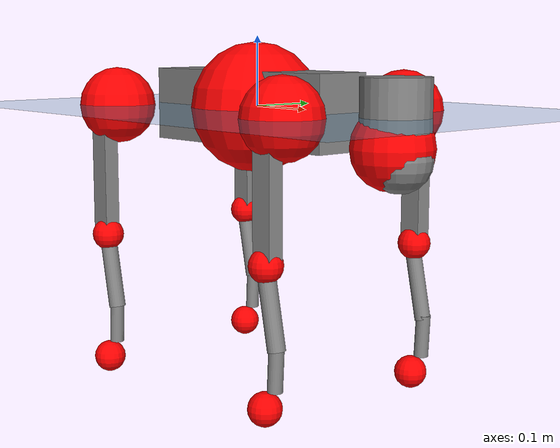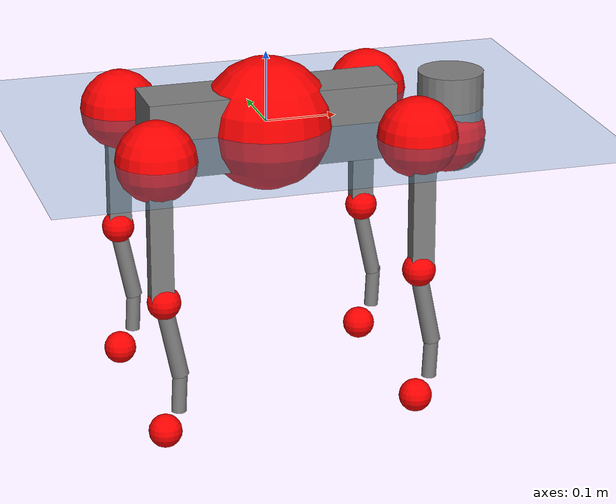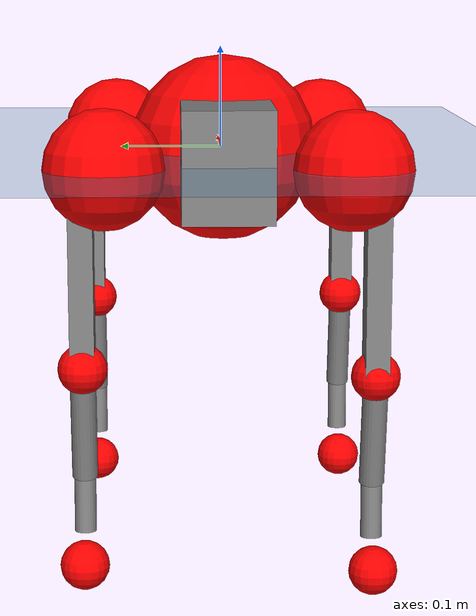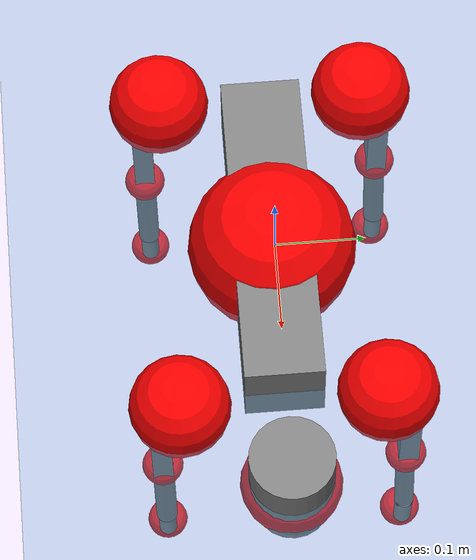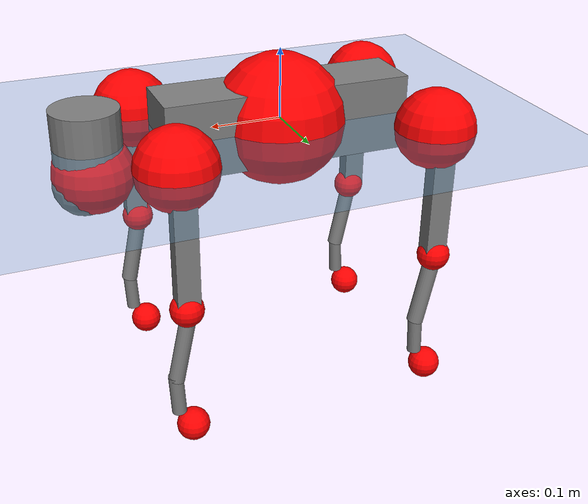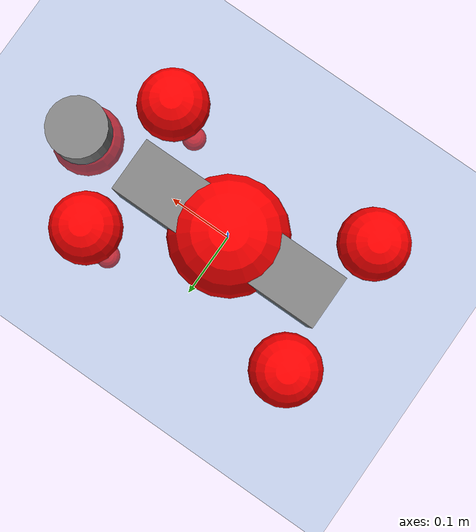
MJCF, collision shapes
<mujoco model="go2">
  <compiler angle="radian" assetdir="assets" balanceinertia="true" inertiafromgeom="false"/>

  <option timestep="0.005" density="1.2" viscosity="2e-05"/>

  <size nkey="1"/>

  <visual>
    <quality shadowsize="8192"/>
    <map shadowclip="0.5"/>
  </visual>

  <default>
    <default class="/">
      <geom contype="0" conaffinity="0" group="1" solref="-1000 -80"/>
      <site size="0.01 0.005 0.005" group="5"/>
      <general forcelimited="true" biastype="affine" gainprm="20" biasprm="0 -20 -0.5"/>
      <default class="go2">
        <joint armature="0.01" damping="0.01" frictionloss="0.2"/>
        <geom condim="1" margin="0.001"/>
        <default class="visual">
          <geom type="mesh" group="2"/>
        </default>
        <default class="collision">
          <geom group="3"/>
          <default class="foot">
            <geom size="0.022 0 0" condim="6" priority="1" friction="0.8 0.02 0.01" solimp="0.015 1 0.022"/>
          </default>
        </default>
        <default class="reward_collision_sphere">
          <geom group="5" rgba="1 0 0 1"/>
        </default>
      </default>
    </default>
  </default>

  <asset>
    <texture type="skybox" colorspace="auto" name="//unnamed_texture_0" builtin="gradient" rgb1="0.95 0.95 0.95" rgb2="0.95 0.95 0.95" width="100" height="600"/>
    <texture type="2d" colorspace="auto" name="texplane" builtin="checker" rgb1="0.345 0.575 0.748" rgb2="0.345 0.575 0.748" markrgb="1 1 1" width="512" height="512"/>
    <material name="MatPlane" class="/" texture="texplane" texuniform="true" texrepeat="2 2" specular="0.9"/>
    <material name="metal" class="/" rgba="0.9 0.95 0.95 1"/>
    <material name="black" class="/" rgba="0 0 0 1"/>
    <material name="white" class="/"/>
    <material name="gray" class="/" rgba="0.671705 0.692426 0.77427 1"/>
    <mesh name="base_0" class="/" file="base_0.obj"/>
    <mesh name="base_1" class="/" file="base_1.obj"/>
    <mesh name="base_2" class="/" file="base_2.obj"/>
    <mesh name="base_3" class="/" file="base_3.obj"/>
    <mesh name="base_4" class="/" file="base_4.obj"/>
    <mesh name="hip_0" class="/" file="hip_0.obj"/>
    <mesh name="hip_1" class="/" file="hip_1.obj"/>
    <mesh name="thigh_0" class="/" file="thigh_0.obj"/>
    <mesh name="thigh_1" class="/" file="thigh_1.obj"/>
    <mesh name="thigh_mirror_0" class="/" file="thigh_mirror_0.obj"/>
    <mesh name="thigh_mirror_1" class="/" file="thigh_mirror_1.obj"/>
    <mesh name="calf_0" class="/" file="calf_0.obj"/>
    <mesh name="calf_1" class="/" file="calf_1.obj"/>
    <mesh name="calf_mirror_0" class="/" file="calf_mirror_0.obj"/>
    <mesh name="calf_mirror_1" class="/" file="calf_mirror_1.obj"/>
    <mesh name="foot" class="/" file="foot.obj"/>
  </asset>

  <worldbody>
    <geom name="floor" class="/" size="100 100 0.125" type="plane" group="0" material="MatPlane"/>
    <light name="toplight_shadow" class="/" pos="0 0 5" dir="0.0990148 0.0990148 -0.990148" type="directional" ambient="0.04 0.04 0.04" diffuse="0.55 0.55 0.55" specular="0.12 0.12 0.12"/>
    <light name="toplight_fill" class="/" pos="0 0 5" dir="0.0990148 0.0990148 -0.990148" type="directional" castshadow="false" ambient="0.04 0.04 0.04" diffuse="0.3 0.3 0.3" specular="0.08 0.08 0.08"/>
    <body name="trunk" childclass="go2" pos="-0.000133008 -0.00283969 -0.00118522" quat="0.999999 0.000318629 -0.00134184 0.000335842">
      <inertial pos="0.0170973 -0.00126008 -0.00207318" quat="-0.00261081 0.71759 -0.0135537 0.696329" mass="5.68302" diaginertia="0.0774571 0.0787208 0.0139061"/>
      <joint name="//unnamed_joint_0" type="free" armature="0" damping="0" frictionloss="0"/>
      <geom name="//unnamed_geom_1" class="visual" material="black" mesh="base_0"/>
      <geom name="//unnamed_geom_2" class="visual" material="black" mesh="base_1"/>
      <geom name="//unnamed_geom_3" class="visual" material="black" mesh="base_2"/>
      <geom name="//unnamed_geom_4" class="visual" material="white" mesh="base_3"/>
      <geom name="//unnamed_geom_5" class="visual" material="gray" mesh="base_4"/>
      <geom name="trunk_1" class="collision" size="0.175325 0.0435748 0.0531286" type="box"/>
      <geom name="trunk_2" class="collision" size="0.0466041 0.0419437" pos="0.269014 0 0.00891104" type="cylinder"/>
      <geom name="trunk_3" class="collision" size="0.0438078" pos="0.276565 0 -0.0534662"/>
      <geom name="//unnamed_geom_9" class="reward_collision_sphere" size="0.0932082"/>
      <geom name="//unnamed_geom_10" class="reward_collision_sphere" size="0.0559249" pos="0.264294 0 -0.0400997"/>
      <site name="imu" pos="-0.0190112 -0.00456515 0.0331928" size="0.00932082"/>
      <camera name="track" pos="0 -1.92246 0" quat="0.707107 0.707107 0 0" mode="trackcom"/>
      <camera name="ego_camera" pos="0.2945 0 0.0400997" quat="-0.5 -0.5 0.5 0.5"/>
      <body name="FL_hip" pos="0.181161 0.0447215 -0.00045116" quat="1 7.54844e-05 0.000138404 -0.000170663">
        <inertial pos="-0.00544046 -0.000478002 -0.00135615" quat="0.497241 0.500065 0.503123 0.499553" mass="0.547273" diaginertia="0.000670583 0.000474811 0.000272355"/>
        <joint name="FL_hip_joint" pos="0 0 0" axis="0.999891 0.0146855 -0.00143375" stiffness="0.00838419" range="-1.1025 1.0569" armature="0.00964063" damping="0.0030281" frictionloss="0.18237"/>
        <geom name="//unnamed_geom_11" class="visual" material="metal" mesh="hip_0"/>
        <geom name="//unnamed_geom_12" class="visual" material="gray" mesh="hip_1"/>
        <geom name="//unnamed_geom_13" class="collision" size="0.0428758 0.0186416" pos="0 0.0768986 0" quat="0.707107 0.707107 0 0" type="cylinder"/>
        <geom name="//unnamed_geom_14" class="reward_collision_sphere" size="0.0559249" pos="0 0.0672862 0"/>
        <body name="FL_thigh" pos="0.00200613 0.0942424 -0.000291735" quat="1 0.000126965 0.00055128 0.000137772">
          <inertial pos="-0.00300671 -0.0204539 -0.028061" quat="0.824057 0.0849637 -0.020923 0.559709" mass="0.968688" diaginertia="0.00436076 0.00490373 0.000495847"/>
          <joint name="FL_thigh_joint" pos="0 0 0" axis="-0.00868311 0.999876 0.0131376" stiffness="0.0152605" range="-1.62692 3.45312" armature="0.00984147" damping="0.00294072" frictionloss="0.161103"/>
          <geom name="//unnamed_geom_15" class="visual" material="metal" mesh="thigh_0"/>
          <geom name="//unnamed_geom_16" class="visual" material="gray" mesh="thigh_1"/>
          <geom name="//unnamed_geom_17" class="collision" size="0.0992667 0.011418 0.0158454" pos="0 0 -0.0949026" quat="0.707107 0 0.707107 0" type="box"/>
          <body name="FL_calf" pos="0.000593027 -0.00110726 -0.189637" quat="1 -0.000331712 3.39152e-05 -0.000409286">
            <inertial pos="0.00378981 -0.00333224 -0.128174" quat="0.711494 0.0034087 0.00338442 0.702675" mass="0.192059" diaginertia="0.00107282 0.00118517 2.91728e-05"/>
            <joint name="FL_calf_joint" pos="0 0 0" axis="-0.00108538 0.999965 -0.00833787" stiffness="0.0138181" range="-2.70366 -0.78627" armature="0.00795675" damping="0" frictionloss="0.199307"/>
            <geom name="//unnamed_geom_18" class="visual" material="gray" mesh="calf_0"/>
            <geom name="//unnamed_geom_19" class="visual" material="black" mesh="calf_1"/>
            <geom name="FL_calf0" class="collision" size="0.011185 0.0559249" pos="0.00755127 0 -0.0534662" quat="0.994493 0 -0.104807 0" type="cylinder"/>
            <geom name="//unnamed_geom_21" class="collision" size="0.0102529 0.0302927" pos="0.0188782 0 -0.131883" quat="0.999688 0 0.0249974 0" type="cylinder"/>
            <geom name="//unnamed_geom_22" class="visual" pos="0 0 -0.189805" quat="1 0 0 0" material="black" mesh="foot"/>
            <geom name="FL_foot" class="foot" size="0.0156228" pos="-0.00188782 0 -0.189805"/>
            <geom name="//unnamed_geom_24" class="reward_collision_sphere" size="0.023302"/>
            <geom name="//unnamed_geom_25" class="reward_collision_sphere" size="0.023302" pos="-0.00188782 0 -0.189805"/>
            <site name="FL_foot" class="foot" pos="-0.00188782 0 -0.189805" size="0.00932082"/>
          </body>
        </body>
      </body>
      <body name="FR_hip" pos="0.181426 -0.0468424 -0.00135991" quat="1 -0.000325027 0.000144968 0.000221045">
        <inertial pos="-0.00388587 3.32874e-05 -0.00171793" quat="0.502731 0.504363 0.491385 0.501418" mass="0.536424" diaginertia="0.000638905 0.000489637 0.000274847"/>
        <joint name="FR_hip_joint" pos="0 0 0" axis="0.999906 0.00857666 -0.0107049" stiffness="0.000312751" range="-1.06694 1.09745" armature="0.00825822" damping="0.00753825" frictionloss="0.194978"/>
        <geom name="//unnamed_geom_26" class="visual" pos="0 6.10927e-10 2.62039e-08" quat="4.63268e-05 1 0 0" material="metal" mesh="hip_0"/>
        <geom name="//unnamed_geom_27" class="visual" pos="0 9.90386e-10 -6.48123e-08" quat="4.63268e-05 1 0 0" material="gray" mesh="hip_1"/>
        <geom name="//unnamed_geom_28" class="collision" size="0.0428758 0.0186416" pos="0 -0.0768986 0" quat="0.707107 0.707107 0 0" type="cylinder"/>
        <geom name="//unnamed_geom_29" class="reward_collision_sphere" size="0.0559249" pos="0 -0.0672862 0"/>
        <body name="FR_thigh" pos="-0.000590754 -0.091565 0.0016741" quat="1 6.21569e-05 0.000169383 -0.000258916">
          <inertial pos="-0.000713203 0.0187779 -0.0273631" quat="0.547132 -0.0163349 0.0804117 0.833015" mass="0.944718" diaginertia="0.00430167 0.00479438 0.000493861"/>
          <joint name="FR_thigh_joint" pos="0 0 0" axis="0.000987012 -0.999998 -0.00182971" stiffness="0.00264219" range="-3.48037 1.59546" armature="0.00843222" damping="0.0222836" frictionloss="0.160326"/>
          <geom name="//unnamed_geom_30" class="visual" material="metal" mesh="thigh_mirror_0"/>
          <geom name="//unnamed_geom_31" class="visual" material="gray" mesh="thigh_mirror_1"/>
          <geom name="//unnamed_geom_32" class="collision" size="0.0992667 0.011418 0.0158454" pos="0 0 -0.0949026" quat="0.707107 0 0.707107 0" type="box"/>
          <body name="FR_calf" pos="-0.0026197 -0.000124297 -0.186799" quat="1 -3.43105e-05 2.32219e-05 -4.42875e-05">
            <inertial pos="0.0031529 0.0034911 -0.125685" quat="0.705185 -0.0105134 0.00975349 0.708878" mass="0.197911" diaginertia="0.00110564 0.00126077 2.92189e-05"/>
            <joint name="FR_calf_joint" pos="0 0 0" axis="-0.00306651 -0.999992 0.00268588" range="0.859794 2.73618" armature="0.00960531" damping="0" frictionloss="0.170346"/>
            <geom name="//unnamed_geom_33" class="visual" material="gray" mesh="calf_mirror_0"/>
            <geom name="//unnamed_geom_34" class="visual" material="black" mesh="calf_mirror_1"/>
            <geom name="FR_calf0" class="collision" size="0.0121171 0.0559249" pos="0.00943909 0 -0.0534662" quat="0.995004 0 -0.0998334 0" type="cylinder"/>
            <geom name="//unnamed_geom_36" class="collision" size="0.0102529 0.0302927" pos="0.0188782 0 -0.131883" quat="0.999688 0 0.0249974 0" type="cylinder"/>
            <geom name="//unnamed_geom_37" class="visual" pos="0 0 -0.189805" quat="1 0 0 0" material="black" mesh="foot"/>
            <geom name="FR_foot" class="foot" size="0.0202125" pos="-0.00188782 0 -0.189805"/>
            <geom name="//unnamed_geom_39" class="reward_collision_sphere" size="0.023302"/>
            <geom name="//unnamed_geom_40" class="reward_collision_sphere" size="0.023302" pos="-0.00188782 0 -0.189805"/>
            <site name="FR_foot" class="foot" pos="-0.00188782 0 -0.189805" size="0.00932082"/>
          </body>
        </body>
      </body>
      <body name="RL_hip" pos="-0.181768 0.0470899 0.000756444" quat="1 3.67862e-05 0.000431442 1.87727e-05">
        <inertial pos="0.00506971 0.00234576 0.0029167" quat="0.505971 0.498987 0.495746 0.49924" mass="0.529817" diaginertia="0.000647876 0.000462618 0.000272288"/>
        <joint name="RL_hip_joint" pos="0 0 0" axis="-0.999905 -0.0133814 -0.00316903" stiffness="0.0085806" range="-1.00199 1.00834" armature="0.0092473" damping="0.012118" frictionloss="0.211545"/>
        <geom name="//unnamed_geom_41" class="visual" pos="-4.60013e-10 0 -9.01732e-08" quat="4.63268e-05 0 1 0" material="metal" mesh="hip_0"/>
        <geom name="//unnamed_geom_42" class="visual" pos="-7.45736e-10 0 -7.99707e-08" quat="4.63268e-05 0 1 0" material="gray" mesh="hip_1"/>
        <geom name="//unnamed_geom_43" class="collision" size="0.0428758 0.0186416" pos="0 0.0768986 0" quat="0.707107 0.707107 0 0" type="cylinder"/>
        <geom name="//unnamed_geom_44" class="reward_collision_sphere" size="0.0559249" pos="0 0.0672862 0"/>
        <body name="RL_thigh" pos="-0.000461074 0.0887789 0.00275705" quat="1 -0.000145981 -0.000624236 -0.000706478">
          <inertial pos="-0.00289213 -0.0207911 -0.0273496" quat="0.823422 0.0788918 -0.0166812 0.56167" mass="0.920563" diaginertia="0.00432559 0.00497623 0.000509067"/>
          <joint name="RL_thigh_joint" pos="0 0 0" axis="-0.00118623 0.999994 0.00323508" stiffness="0.000803798" range="-0.505053 4.55132" armature="0.0106264" damping="0.0228268" frictionloss="0.161277"/>
          <geom name="//unnamed_geom_45" class="visual" material="metal" mesh="thigh_0"/>
          <geom name="//unnamed_geom_46" class="visual" material="gray" mesh="thigh_1"/>
          <geom name="//unnamed_geom_47" class="collision" size="0.0992667 0.011418 0.0158454" pos="0 0 -0.0949026" quat="0.707107 0 0.707107 0" type="box"/>
          <body name="RL_calf" pos="-0.0022827 -1.02683e-05 -0.187776" quat="0.999999 0.0011452 0.000242095 -0.000772669">
            <inertial pos="0.00556126 0.00190908 -0.124962" quat="0.711457 -0.0027035 -0.00671821 0.702693" mass="0.191434" diaginertia="0.0010705 0.00115194 2.86765e-05"/>
            <joint name="RL_calf_joint" pos="0 0 0" axis="0.0032799 0.999986 0.0042267" stiffness="0.00749241" range="-2.69723 -0.826581" armature="0.00980161" damping="0.0145138" frictionloss="0.160124"/>
            <geom name="//unnamed_geom_48" class="visual" material="gray" mesh="calf_0"/>
            <geom name="//unnamed_geom_49" class="visual" material="black" mesh="calf_1"/>
            <geom name="RL_calf0" class="collision" size="0.0121171 0.0559249" pos="0.00943909 0 -0.0534662" quat="0.995004 0 -0.0998334 0" type="cylinder"/>
            <geom name="//unnamed_geom_51" class="collision" size="0.0102529 0.0302927" pos="0.0188782 0 -0.131883" quat="0.999688 0 0.0249974 0" type="cylinder"/>
            <geom name="//unnamed_geom_52" class="visual" pos="0 0 -0.189805" quat="1 0 0 0" material="black" mesh="foot"/>
            <geom name="RL_foot" class="foot" size="0.0173584" pos="-0.00188782 0 -0.189805"/>
            <geom name="//unnamed_geom_54" class="reward_collision_sphere" size="0.023302"/>
            <geom name="//unnamed_geom_55" class="reward_collision_sphere" size="0.023302" pos="-0.00188782 0 -0.189805"/>
            <site name="RL_foot" class="foot" pos="-0.00188782 0 -0.189805" size="0.00932082"/>
          </body>
        </body>
      </body>
      <body name="RR_hip" pos="-0.183935 -0.0461539 -0.000592357" quat="1 -0.000161917 -0.000210626 0.000159361">
        <inertial pos="0.00407623 -0.0028533 0.000905324" quat="0.499417 0.49592 0.497706 0.506888" mass="0.533802" diaginertia="0.000642594 0.000480621 0.000263289"/>
        <joint name="RR_hip_joint" pos="0 0 0" axis="-0.999994 0.00350981 -0.000279699" stiffness="0.00892646" range="-1.04314 1.10407" armature="0.0102268" damping="0.00564128" frictionloss="0.212518"/>
        <geom name="//unnamed_geom_56" class="visual" pos="4.60613e-10 6.10927e-10 -1.16377e-07" quat="2.14617e-09 4.63268e-05 4.63268e-05 -1" material="metal" mesh="hip_0"/>
        <geom name="//unnamed_geom_57" class="visual" pos="7.44253e-10 9.90386e-10 -1.51584e-08" quat="2.14617e-09 4.63268e-05 4.63268e-05 -1" material="gray" mesh="hip_1"/>
        <geom name="//unnamed_geom_58" class="collision" size="0.0428758 0.0186416" pos="0 -0.0768986 0" quat="0.707107 0.707107 0 0" type="cylinder"/>
        <geom name="//unnamed_geom_59" class="reward_collision_sphere" size="0.0559249" pos="0 -0.0672862 0"/>
        <body name="RR_thigh" pos="-0.00262961 -0.0897001 -0.0035241" quat="1 -0.000695937 4.70245e-05 -0.000465349">
          <inertial pos="-0.002895 0.0188165 -0.0287239" quat="0.553076 -0.0201931 0.0820027 0.82884" mass="0.948895" diaginertia="0.00452898 0.00475088 0.000477925"/>
          <joint name="RR_thigh_joint" pos="0 0 0" axis="-0.00181058 -0.999986 -0.00502535" stiffness="0.00989395" range="-4.55505 0.54306" armature="0.00869254" damping="0.0230369" frictionloss="0.195843"/>
          <geom name="//unnamed_geom_60" class="visual" material="metal" mesh="thigh_mirror_0"/>
          <geom name="//unnamed_geom_61" class="visual" material="gray" mesh="thigh_mirror_1"/>
          <geom name="//unnamed_geom_62" class="collision" size="0.0992667 0.011418 0.0158454" pos="0 0 -0.0949026" quat="0.707107 0 0.707107 0" type="box"/>
          <body name="RR_calf" pos="0.00356992 -0.000353986 -0.189333" quat="1 -2.35474e-06 -0.000184949 0.000328847">
            <inertial pos="0.00308384 -0.000346174 -0.126303" quat="0.702766 -0.00485909 0.00217746 0.711401" mass="0.201951" diaginertia="0.00112724 0.00123546 3.01817e-05"/>
            <joint name="RR_calf_joint" pos="0 0 0" axis="-0.00650186 -0.999957 0.00667121" range="0.878637 2.77388" armature="0.00972252" damping="0.0144904" frictionloss="0.211349"/>
            <geom name="//unnamed_geom_63" class="visual" material="gray" mesh="calf_mirror_0"/>
            <geom name="//unnamed_geom_64" class="visual" material="black" mesh="calf_mirror_1"/>
            <geom name="RR_calf0" class="collision" size="0.0121171 0.0559249" pos="0.00943909 0 -0.0534662" quat="0.995004 0 -0.0998334 0" type="cylinder"/>
            <geom name="//unnamed_geom_66" class="collision" size="0.0102529 0.0302927" pos="0.0188782 0 -0.131883" quat="0.999688 0 0.0249974 0" type="cylinder"/>
            <geom name="//unnamed_geom_67" class="visual" pos="0 0 -0.189805" quat="1 0 0 0" material="black" mesh="foot"/>
            <geom name="RR_foot" class="foot" size="0.0213192" pos="-0.00188782 0 -0.189805"/>
            <geom name="//unnamed_geom_69" class="reward_collision_sphere" size="0.023302"/>
            <geom name="//unnamed_geom_70" class="reward_collision_sphere" size="0.023302" pos="-0.00188782 0 -0.189805"/>
            <site name="RR_foot" class="foot" pos="-0.00188782 0 -0.189805" size="0.00932082"/>
          </body>
        </body>
      </body>
    </body>
  </worldbody>

  <contact>
    <pair class="/" geom1="floor" geom2="FL_foot" name="//unnamed_contact_0"/>
    <pair class="/" geom1="floor" geom2="FR_foot" name="//unnamed_contact_1"/>
    <pair class="/" geom1="floor" geom2="RL_foot" name="//unnamed_contact_2"/>
    <pair class="/" geom1="floor" geom2="RR_foot" name="//unnamed_contact_3"/>
  </contact>

  <actuator>
    <general name="FL_hip" class="/" joint="FL_hip_joint" forcerange="-24.0245 24.0245" gainprm="18.655" biasprm="0 -18.655 -0.457313"/>
    <general name="FL_thigh" class="/" joint="FL_thigh_joint" forcerange="-21.5559 21.5559" gainprm="18.655" biasprm="0 -18.655 -0.457313"/>
    <general name="FL_calf" class="/" joint="FL_calf_joint" forcerange="-40.8632 40.8632" gainprm="18.655" biasprm="0 -18.655 -0.457313"/>
    <general name="FR_hip" class="/" joint="FR_hip_joint" forcerange="-19.9407 19.9407" gainprm="18.655" biasprm="0 -18.655 -0.457313"/>
    <general name="FR_thigh" class="/" joint="FR_thigh_joint" forcerange="-22.5501 22.5501" gainprm="18.655" biasprm="0 -18.655 -0.457313"/>
    <general name="FR_calf" class="/" joint="FR_calf_joint" forcerange="-37.6652 37.6652" gainprm="18.655" biasprm="0 -18.655 -0.457313"/>
    <general name="RL_hip" class="/" joint="RL_hip_joint" forcerange="-20.9396 20.9396" gainprm="18.655" biasprm="0 -18.655 -0.457313"/>
    <general name="RL_thigh" class="/" joint="RL_thigh_joint" forcerange="-22.2789 22.2789" gainprm="18.655" biasprm="0 -18.655 -0.457313"/>
    <general name="RL_calf" class="/" joint="RL_calf_joint" forcerange="-44.2692 44.2692" gainprm="18.655" biasprm="0 -18.655 -0.457313"/>
    <general name="RR_hip" class="/" joint="RR_hip_joint" forcerange="-20.0675 20.0675" gainprm="18.655" biasprm="0 -18.655 -0.457313"/>
    <general name="RR_thigh" class="/" joint="RR_thigh_joint" forcerange="-23.5042 23.5042" gainprm="18.655" biasprm="0 -18.655 -0.457313"/>
    <general name="RR_calf" class="/" joint="RR_calf_joint" forcerange="-45.482 45.482" gainprm="18.655" biasprm="0 -18.655 -0.457313"/>
  </actuator>

  <sensor>
    <gyro site="imu" name="imu_angular_velocity"/>
    <velocimeter site="imu" name="imu_linear_velocity"/>
    <framelinvel objtype="site" objname="FL_foot" name="FL_foot_global_linear_velocity"/>
    <framelinvel objtype="site" objname="FR_foot" name="FR_foot_global_linear_velocity"/>
    <framelinvel objtype="site" objname="RL_foot" name="RL_foot_global_linear_velocity"/>
    <framelinvel objtype="site" objname="RR_foot" name="RR_foot_global_linear_velocity"/>
  </sensor>

  <keyframe>
    <key name="home" qpos="0 0 0.325 1 0 0 0 0.1 0.8 -1.5 -0.1 -0.8 1.5 -0.1 0.8 -1.5 0.1 -0.8 1.5"/>
  </keyframe>
</mujoco>
